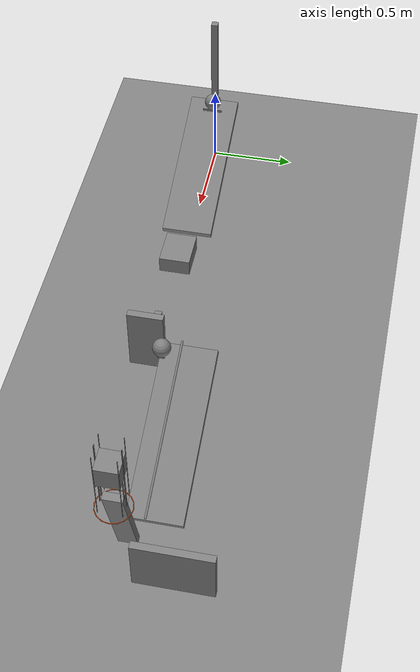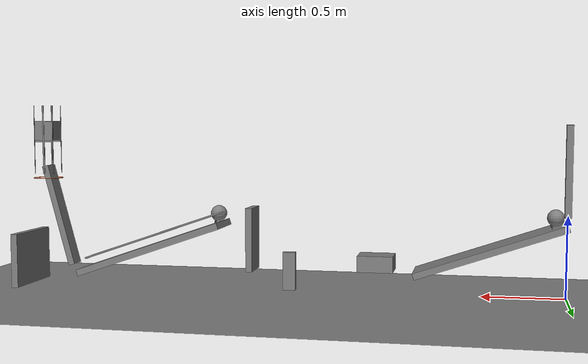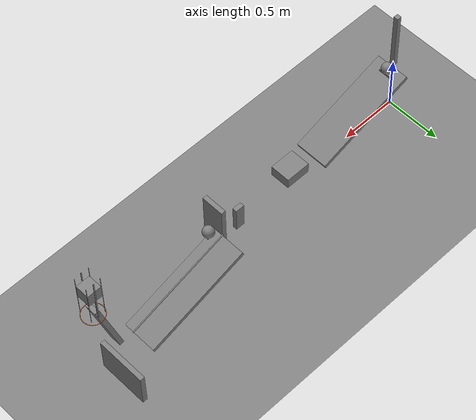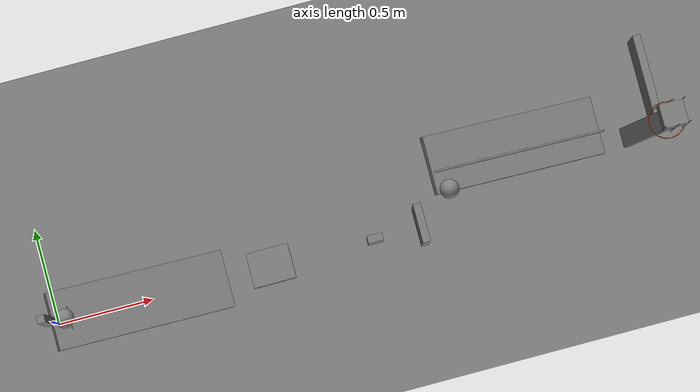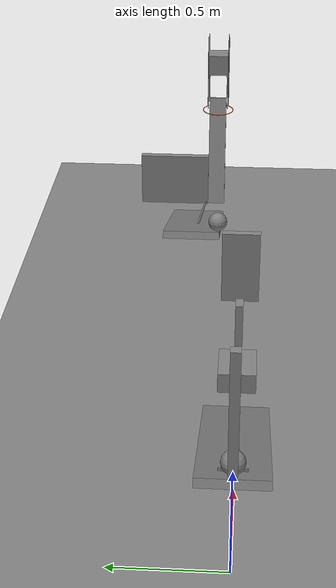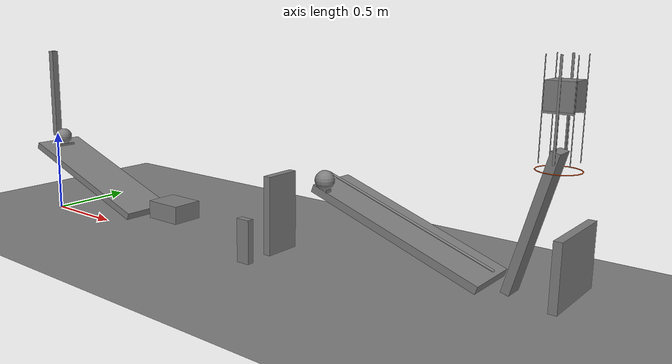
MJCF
<mujoco model="pendulum_domino_flap_seesaw_chain">
  <compiler angle="radian"/>
  <option timestep="0.002"/>
  <worldbody>
    <geom name="floor" type="plane" size="8 8 0.1" friction="0.68 0.005 0.0001"/>
    <body name="ramp1">
      <geom name="ramp1" type="box" pos="0.449121 0 0.285735" size="0.475 0.15 0.02" euler="0 0.331613 0" friction="0.68 0.005 0.0001" solref="0.01 0.690107"/>
    </body>
    <body name="pendulum1" pos="0 0 1.04029">
      <joint name="pendulum1_hinge" type="hinge" pos="0 0 0" axis="0 1 0" limited="true" range="-1.39626 0.959931" damping="0.04"/>
      <geom name="pendulum1" type="box" pos="0 0 -0.275" size="0.02 0.02 0.275" mass="0.4" friction="0.68 0.005 0.0001" solref="0.01 0.690107"/>
    </body>
    <body name="ball1" pos="0.0700657 0 0.490287">
      <freejoint/>
      <geom name="ball1" type="sphere" pos="0 0 0" size="0.05" mass="0.2" condim="6" friction="0.68 0.005 0.0001" solref="0.01 0.690107"/>
    </body>
    <body name="ball1 release lip">
      <geom name="ball1 release lip" type="box" pos="0.0920657 0 0.437587" size="0.002 0.06 0.007" friction="0.68 0.005 0.0001" solref="0.01 0.690107"/>
    </body>
    <body name="cart1" pos="1.13475 0 0.19">
      <joint name="cart1_slide" type="slide" pos="0 0 0" axis="1 0 0" limited="true" range="0 0.4" damping="0.2"/>
      <geom name="cart1" type="box" pos="0 0 0" size="0.11 0.09 0.05" mass="0.5" friction="0.68 0.005 0.0001" solref="0.01 0.690107"/>
    </body>
    <body name="domino1" pos="1.68475 0 0.12">
      <freejoint/>
      <geom name="domino1" type="box" pos="0 0 0" size="0.04 0.02 0.12" mass="0.25" friction="0.68 0.005 0.0001" solref="0.01 0.690107"/>
    </body>
    <body name="flap1" pos="1.92475 0 0.12">
      <joint name="flap1_hinge" type="hinge" pos="0 0 0" axis="0 1 0" limited="true" range="0 1.13446" damping="0.04"/>
      <geom name="flap1" type="box" pos="0 0 0.2" size="0.02 0.1 0.2" mass="0.3" friction="0.68 0.005 0.0001" solref="0.01 0.690107"/>
    </body>
    <body name="ramp2">
      <geom name="ramp2" type="box" pos="2.48381 0.27 0.285735" size="0.475 0.15 0.02" euler="0 0.331613 0" friction="0.68 0.005 0.0001" solref="0.01 0.690107"/>
    </body>
    <body name="ball2" pos="2.10475 0.13 0.490287">
      <freejoint/>
      <geom name="ball2" type="sphere" pos="0 0 0" size="0.05" mass="0.2" condim="6" friction="0.68 0.005 0.0001" solref="0.01 0.690107"/>
    </body>
    <body name="ball2 release lip">
      <geom name="ball2 release lip" type="box" pos="2.12675 0.13 0.437587" size="0.002 0.02 0.007" friction="0.68 0.005 0.0001" solref="0.01 0.690107"/>
    </body>
    <body name="ramp2 guide">
      <geom name="ramp2 guide" type="capsule" size="0.006" fromto="2.05748 0.231 0.506566 2.95572 0.231 0.197276" friction="0.68 0.005 0.0001" solref="0.01 0.690107"/>
    </body>
    <body name="seesaw1" pos="3.14288 0.17 0.463926">
      <joint name="seesaw1_hinge" type="hinge" pos="0 0 0" axis="0 1 0" limited="true" range="-0.698132 0" damping="0.04"/>
      <geom name="seesaw1" type="box" pos="0 0 -5e-10" size="0.325 0.05 0.02" euler="0 -1.309 0" mass="0.51" friction="0.68 0.005 0.0001" solref="0.01 0.690107"/>
      <geom name="seesaw left bracket" type="box" pos="0.0841162 0.0525 0.39" size="0.003 0.002 0.0760741" mass="0.01" friction="0.68 0.005 0.0001" solref="0.01 0.690107"/>
      <geom name="seesaw right bracket" type="box" pos="0.0841162 -0.0525 0.39" size="0.003 0.002 0.0760741" mass="0.01" friction="0.68 0.005 0.0001" solref="0.01 0.690107"/>
      <geom name="seesaw left perch" type="box" pos="0.0841162 0.0525 0.471074" size="0.06 0.002 0.005" mass="0.01" friction="0.68 0.005 0.0001" solref="0.01 0.690107"/>
      <geom name="seesaw right perch" type="box" pos="0.0841162 -0.0525 0.471074" size="0.06 0.002 0.005" mass="0.01" friction="0.68 0.005 0.0001" solref="0.01 0.690107"/>
    </body>
    <body name="block1" pos="3.22699 0.17 1">
      <freejoint/>
      <geom name="block1" type="box" pos="0 0 0" size="0.06 0.06 0.06" mass="0.35" friction="0.68 0.005 0.0001" solref="0.01 0.690107"/>
    </body>
    <body name="block guide near left">
      <geom name="block guide near left" type="box" pos="3.16449 0.2285 0.945" size="0.0015 0.0015 0.215" friction="0.68 0.005 0.0001" solref="0.01 0.690107"/>
    </body>
    <body name="block guide near right">
      <geom name="block guide near right" type="box" pos="3.16449 0.1115 0.945" size="0.0015 0.0015 0.215" friction="0.68 0.005 0.0001" solref="0.01 0.690107"/>
    </body>
    <body name="block guide far left">
      <geom name="block guide far left" type="box" pos="3.28949 0.2285 0.945" size="0.0015 0.0015 0.215" friction="0.68 0.005 0.0001" solref="0.01 0.690107"/>
    </body>
    <body name="block guide far right">
      <geom name="block guide far right" type="box" pos="3.28949 0.1115 0.945" size="0.0015 0.0015 0.215" friction="0.68 0.005 0.0001" solref="0.01 0.690107"/>
    </body>
    <body name="block guide left">
      <geom name="block guide left" type="box" pos="3.22699 0.2325 0.945" size="0.005 0.0015 0.215" friction="0.68 0.005 0.0001" solref="0.01 0.690107"/>
    </body>
    <body name="block guide right">
      <geom name="block guide right" type="box" pos="3.22699 0.1075 0.945" size="0.005 0.0015 0.215" friction="0.68 0.005 0.0001" solref="0.01 0.690107"/>
    </body>
    <body name="ring1">
      <geom name="ring1_00" type="capsule" size="0.002" fromto="3.31899 0.17 0.7 3.31199 0.205207 0.7" friction="0.68 0.005 0.0001" solref="0.01 0.690107" rgba="0.9 0.3 0.05 1"/>
      <geom name="ring1_01" type="capsule" size="0.002" fromto="3.31199 0.205207 0.7 3.29205 0.235054 0.7" friction="0.68 0.005 0.0001" solref="0.01 0.690107" rgba="0.9 0.3 0.05 1"/>
      <geom name="ring1_02" type="capsule" size="0.002" fromto="3.29205 0.235054 0.7 3.2622 0.254997 0.7" friction="0.68 0.005 0.0001" solref="0.01 0.690107" rgba="0.9 0.3 0.05 1"/>
      <geom name="ring1_03" type="capsule" size="0.002" fromto="3.2622 0.254997 0.7 3.22699 0.262 0.7" friction="0.68 0.005 0.0001" solref="0.01 0.690107" rgba="0.9 0.3 0.05 1"/>
      <geom name="ring1_04" type="capsule" size="0.002" fromto="3.22699 0.262 0.7 3.19179 0.254997 0.7" friction="0.68 0.005 0.0001" solref="0.01 0.690107" rgba="0.9 0.3 0.05 1"/>
      <geom name="ring1_05" type="capsule" size="0.002" fromto="3.19179 0.254997 0.7 3.16194 0.235054 0.7" friction="0.68 0.005 0.0001" solref="0.01 0.690107" rgba="0.9 0.3 0.05 1"/>
      <geom name="ring1_06" type="capsule" size="0.002" fromto="3.16194 0.235054 0.7 3.142 0.205207 0.7" friction="0.68 0.005 0.0001" solref="0.01 0.690107" rgba="0.9 0.3 0.05 1"/>
      <geom name="ring1_07" type="capsule" size="0.002" fromto="3.142 0.205207 0.7 3.13499 0.17 0.7" friction="0.68 0.005 0.0001" solref="0.01 0.690107" rgba="0.9 0.3 0.05 1"/>
      <geom name="ring1_08" type="capsule" size="0.002" fromto="3.13499 0.17 0.7 3.142 0.134793 0.7" friction="0.68 0.005 0.0001" solref="0.01 0.690107" rgba="0.9 0.3 0.05 1"/>
      <geom name="ring1_09" type="capsule" size="0.002" fromto="3.142 0.134793 0.7 3.16194 0.104946 0.7" friction="0.68 0.005 0.0001" solref="0.01 0.690107" rgba="0.9 0.3 0.05 1"/>
      <geom name="ring1_10" type="capsule" size="0.002" fromto="3.16194 0.104946 0.7 3.19179 0.0850031 0.7" friction="0.68 0.005 0.0001" solref="0.01 0.690107" rgba="0.9 0.3 0.05 1"/>
      <geom name="ring1_11" type="capsule" size="0.002" fromto="3.19179 0.0850031 0.7 3.22699 0.078 0.7" friction="0.68 0.005 0.0001" solref="0.01 0.690107" rgba="0.9 0.3 0.05 1"/>
      <geom name="ring1_12" type="capsule" size="0.002" fromto="3.22699 0.078 0.7 3.2622 0.0850031 0.7" friction="0.68 0.005 0.0001" solref="0.01 0.690107" rgba="0.9 0.3 0.05 1"/>
      <geom name="ring1_13" type="capsule" size="0.002" fromto="3.2622 0.0850031 0.7 3.29205 0.104946 0.7" friction="0.68 0.005 0.0001" solref="0.01 0.690107" rgba="0.9 0.3 0.05 1"/>
      <geom name="ring1_14" type="capsule" size="0.002" fromto="3.29205 0.104946 0.7 3.31199 0.134793 0.7" friction="0.68 0.005 0.0001" solref="0.01 0.690107" rgba="0.9 0.3 0.05 1"/>
      <geom name="ring1_15" type="capsule" size="0.002" fromto="3.31199 0.134793 0.7 3.31899 0.17 0.7" friction="0.68 0.005 0.0001" solref="0.01 0.690107" rgba="0.9 0.3 0.05 1"/>
    </body>
    <body name="door1" pos="3.22699 0.435 0.39">
      <joint name="door1_hinge" type="hinge" pos="0 0 0" axis="1 0 0" limited="true" range="0 1.39626" damping="0.04"/>
      <geom name="door1" type="box" pos="0 0 -0.16" size="0.02 0.21 0.16" mass="0.45" friction="0.68 0.005 0.0001" solref="0.01 0.690107"/>
    </body>
  </worldbody>
  <keyframe>
    <key name="start" qpos="0.959931 0.0700657 0 0.490287 1 0 0 0 0 1.68475 0 0.12 1 0 0 0 0 2.10475 0.13 0.490287 1 0 0 0 0 3.22699 0.17 1 1 0 0 0 0" qvel="0 0 0 0 0 0 0 0 0 0 0 0 0 0 0 0 0 0 0 0 0 0 0 0 0 0 0 0 0"/>
  </keyframe>
</mujoco>
